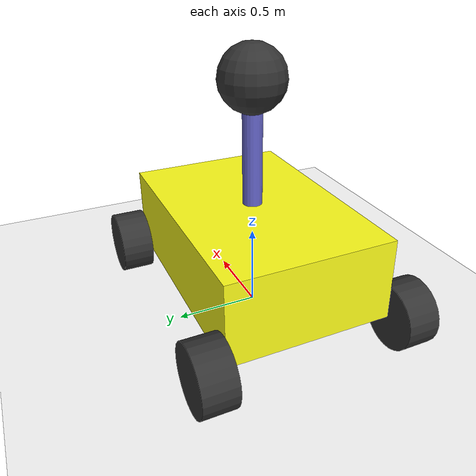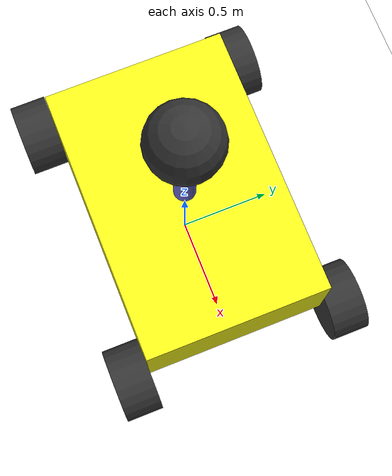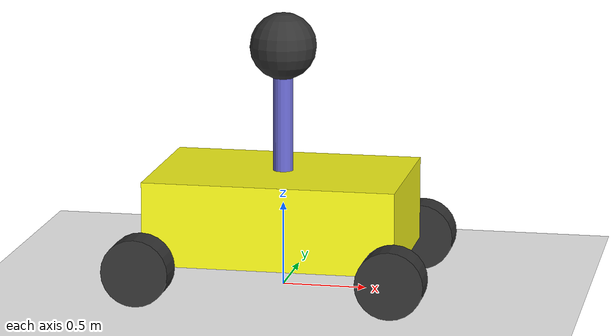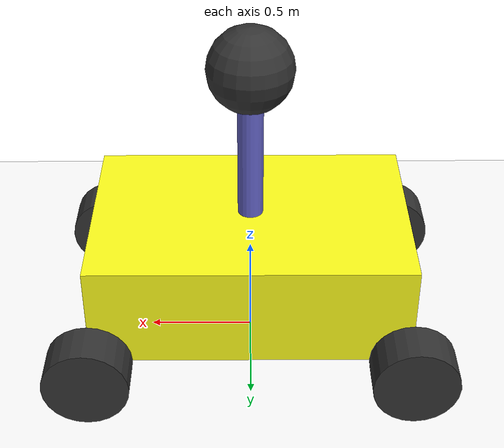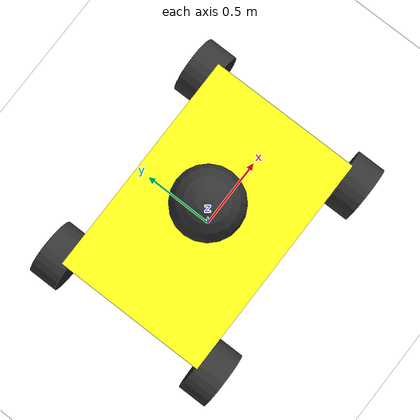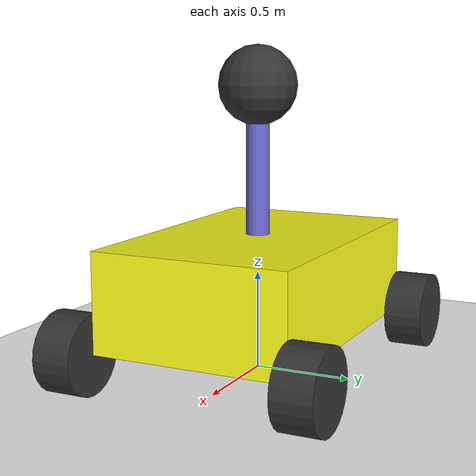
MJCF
<!-- cart_pole.xml -->
<mujoco model="YunusEmreDanabas_CartPole">
    <option gravity="0 0 -9.81" timestep="0.01"/>
    <worldbody>
        <!-- Lighting and Ground -->
        <light diffuse=".5 .5 .5" pos="0 0 20.0" dir="0 0 -1"/>
        <geom type="plane" size="20 20 1.0" rgba="1 1 1 1.0" condim="1"/>

        <!-- Cart Body -->
        <body name="chasis" pos="0 0 0.45">
            <!--
                SLIDE JOINT for the cart along x-axis.
                If you want purely 1D motion, remove chasis_slider_z
                or fix it.
            -->
            <joint name="chasis_slider_x" type="slide" axis="1 0 0"/>

            <geom type="box" size="0.75 0.5 0.25" rgba="1 1 0.1 1" mass="1"/>

            <!-- Right Front Wheel -->
            <body name="right_front_wheel" pos="-0.75 -.60 -0.25">
                <geom type="cylinder" size="0.20 0.1" rgba="0.2 0.2 0.2 1" euler="90 0 0" mass="1e-6" condim="1"/>
                <joint name="right_front_wheel_joint" type="hinge" axis="0 1 0"/>
            </body>

            <!-- Right Rear Wheel -->
            <body name="right_rear_wheel" pos="0.75 -.60 -0.25">
                <geom type="cylinder" size="0.20 0.1" rgba="0.2 0.2 0.2 1" euler="90 0 0" mass="1e-6" condim="1"/>
                <joint name="right_rear_wheel_joint" type="hinge" axis="0 1 0"/>
            </body>

            <!-- Left Front Wheel -->
            <body name="left_front_wheel" pos="-0.75 .60 -0.25">
                <geom type="cylinder" size="0.20 0.1" rgba="0.2 0.2 0.2 1" euler="90 0 0" mass="1e-6" condim="1"/>
                <joint name="left_front_wheel_joint" type="hinge" axis="0 1 0"/>
            </body>

            <!-- Left Rear Wheel -->
            <body name="left_rear_wheel" pos="0.75 .60 -0.25">
                <geom type="cylinder" size="0.20 0.1" rgba="0.2 0.2 0.2 1" euler="90 0 0" mass="1e-6" condim="1"/>
                <joint name="left_rear_wheel_joint" type="hinge" axis="0 1 0"/>
            </body>

            <!-- Pole -->
            <body name="pole" pos="0 0 0.0" euler="0 0 180">
                <!-- Hinge around the y-axis, range ±90 deg
                     (be aware MuJoCo typically uses radians) -->
                <joint name="pole_hinge" type="hinge" pos="0 0 0.0" axis="0 1 0" limited="false"/>
                <geom type="capsule" size="0.06" fromto="0 0 0 0 0 1.0" rgba="0.4 0.4 0.8 1" mass="1e-6" friction="0 0 0"/>
                <site name="pole_tip" pos="0 0 1.0"/>

                <!-- Mass on the Pole -->
                <body name="mass" pos="0 0 1.0">
                    <geom type="sphere" size="0.2" rgba="0.2 0.2 0.2 1" euler="0 0 0" mass="1.0" condim="1"/>
                </body>
            </body>
        </body>
    </worldbody>

    <!-- Sensors -->
    <sensor>
        <jointpos joint="chasis_slider_x" name="cart_position"/>
        <jointvel joint="chasis_slider_x" name="cart_velocity"/>
        <jointpos joint="pole_hinge" name="pole_angle"/>
        <jointvel joint="pole_hinge" name="pole_angular_velocity"/>
    </sensor>

    <!-- Actuators -->
    <actuator>
        <motor joint="chasis_slider_x" name="cart_force" ctrllimited="true" ctrlrange="-10 10"/>
        <motor joint="pole_hinge" name="pole_torque" ctrllimited="true" ctrlrange="-5 5"/>
    </actuator>

    <contact>

        <exclude name="pole_ground_exclude" body1="world" body2="pole"/>
        <exclude name="mass_ground_exclude" body1="world" body2="mass"/>

    </contact>
</mujoco>
